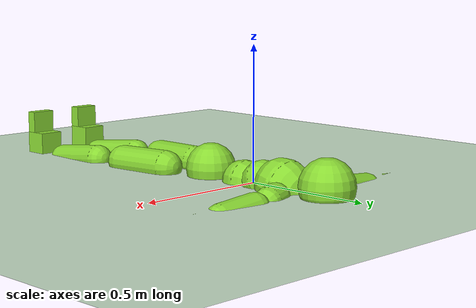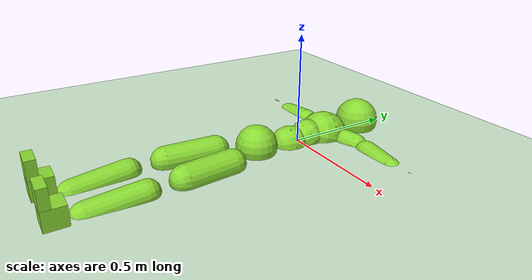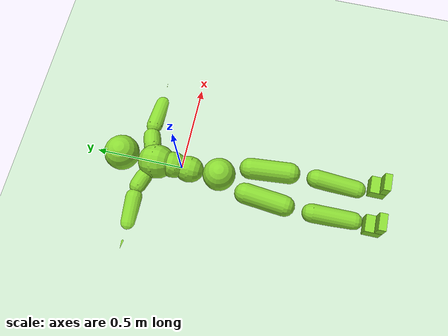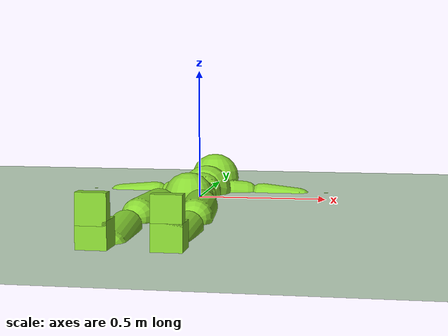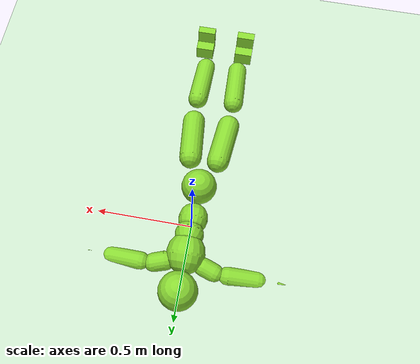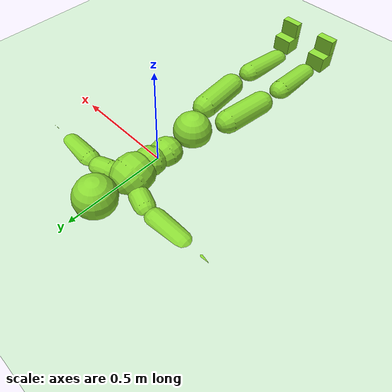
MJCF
<mujoco model="smpl_humanoid">
  <compiler angle="radian" />
  <default>
    <joint damping="0.0" armature="0.01" stiffness="0.0" limited="true" />
    <geom conaffinity="1" condim="3" contype="7" margin="0.001" material="humanoid_green" />
  </default>
  <asset>
    <texture type="skybox" builtin="gradient" rgb1=".4 .5 .6" rgb2="0 0 0" width="100" height="100" />
    <texture builtin="flat" height="1278" mark="cross" markrgb="1 1 1" name="texgeom" random="0.01" rgb1="0.8 0.6 0.4" rgb2="0.8 0.6 0.4" type="cube" width="127" />
    <texture builtin="checker" height="100" name="texplane" rgb1="0 0 0" rgb2="0.8 0.8 0.8" type="2d" width="100" />
    <material name="MatPlane" reflectance="0.5" shininess="1" specular="1" texrepeat="60 60" texture="texplane" />
    <material name="humanoid_green" rgba="0.54 0.85 0.2 1" />
    <material name="geom" texture="texgeom" texuniform="true" />
  </asset>
  <worldbody>
    <light cutoff="100" diffuse="1 1 1" dir="-0 0 -1.3" directional="true" exponent="1" pos="0 0 1.3" specular=".1 .1 .1" />
    <geom conaffinity="1" condim="3" name="floor" pos="0 0 0" rgba="0.8 0.9 0.8 1" size="100 100 .2" type="plane" material="MatPlane" />
    <body name="Pelvis" pos="-0.0018 -0.2233 0.0282">
      <joint name="floating_base_joint" type="free" />
      <geom type="sphere" contype="1" conaffinity="1" density="4629.6296296296305" size="0.0942" pos="0.0000 0.0000 0.0000" name="Pelvis" material="humanoid_green" />
      <body name="L_Hip" pos="0.0695 -0.0914 -0.0068">
        <joint name="L_Hip_x" type="hinge" pos="0 0 0" axis="1 0 0" user="250 2.5 1 500 10 2" armature="0.01" range="-1.5708 1.5708" damping="0" stiffness="0" />
        <joint name="L_Hip_y" type="hinge" pos="0 0 0" axis="0 1 0" user="250 2.5 1 500 10 2" armature="0.01" range="-1.5708 1.5708" damping="0" stiffness="0" />
        <joint name="L_Hip_z" type="hinge" pos="0 0 0" axis="0 0 1" user="250 2.5 1 500 10 2" armature="0.01" range="-1.5708 1.5708" damping="0" stiffness="0" />
        <geom type="capsule" contype="1" conaffinity="1" density="2040.816327" fromto="0.0069 -0.0750 -0.0009 0.0274 -0.3002 -0.0036" size="0.0615" name="L_Hip" material="humanoid_green" />
        <body name="L_Knee" pos="0.0343 -0.3752 -0.0045">
          <joint name="L_Knee_x" type="hinge" pos="0 0 0" axis="1 0 0" user="250 2.5 1 500 10 2" armature="0.01" range="-3.1416 3.1416" damping="0" stiffness="0" />
          <joint name="L_Knee_y" type="hinge" pos="0 0 0" axis="0 1 0" user="250 2.5 1 500 10 2" armature="0.01" range="-0.0982 0.0982" damping="0" stiffness="0" />
          <joint name="L_Knee_z" type="hinge" pos="0 0 0" axis="0 0 1" user="250 2.5 1 500 10 2" armature="0.01" range="-0.0982 0.0982" damping="0" stiffness="0" />
          <geom type="capsule" contype="1" conaffinity="1" density="1234.567901" fromto="-0.0027 -0.0796 -0.0087 -0.0109 -0.3184 -0.0350" size="0.0541" name="L_Knee" material="humanoid_green" />
          <body name="L_Ankle" pos="-0.0136 -0.398 -0.0437">
            <joint name="L_Ankle_x" type="hinge" pos="0 0 0" axis="1 0 0" user="150 2.5 1 500 10 2" armature="0.01" range="-1.5708 1.5708" damping="0" stiffness="0" />
            <joint name="L_Ankle_y" type="hinge" pos="0 0 0" axis="0 1 0" user="150 2.5 1 500 10 2" armature="0.01" range="-1.5708 1.5708" damping="0" stiffness="0" />
            <joint name="L_Ankle_z" type="hinge" pos="0 0 0" axis="0 0 1" user="150 2.5 1 500 10 2" armature="0.01" range="-1.5708 1.5708" damping="0" stiffness="0" />
            <geom type="box" density="449.071564" pos="0.0233 -0.0239 0.0242" size="0.0483 0.0464 0.085" quat="1.0000 0.0000 0.0000 0.0000" name="L_Ankle" material="humanoid_green" />
            <body name="L_Toe" pos="0.0264 -0.0558 0.1193">
              <joint name="L_Toe_x" type="hinge" pos="0 0 0" axis="1 0 0" user="150 1 1 500 1 1" armature="0.01" range="-1.5708 1.5708" damping="0" stiffness="0" />
              <joint name="L_Toe_y" type="hinge" pos="0 0 0" axis="0 1 0" user="150 1 1 500 1 1" armature="0.01" range="-0.7854 0.7854" damping="0" stiffness="0" />
              <joint name="L_Toe_z" type="hinge" pos="0 0 0" axis="0 0 1" user="150 1 1 500 1 1" armature="0.01" range="-0.7854 0.7854" damping="0" stiffness="0" />
              <geom type="box" density="423.206892" pos="-0.0030 0.0055 0.0248" size="0.0478 0.02 0.0496" quat="1.0000 0.0000 0.0000 0.0000" name="L_Toe" material="humanoid_green" />
            </body>
          </body>
        </body>
      </body>
      <body name="R_Hip" pos="-0.0677 -0.0905 -0.0043">
        <joint name="R_Hip_x" type="hinge" pos="0 0 0" axis="1 0 0" user="250 2.5 1 500 10 2" armature="0.01" range="-1.5708 1.5708" damping="0" stiffness="0" />
        <joint name="R_Hip_y" type="hinge" pos="0 0 0" axis="0 1 0" user="250 2.5 1 500 10 2" armature="0.01" range="-1.5708 1.5708" damping="0" stiffness="0" />
        <joint name="R_Hip_z" type="hinge" pos="0 0 0" axis="0 0 1" user="250 2.5 1 500 10 2" armature="0.01" range="-1.5708 1.5708" damping="0" stiffness="0" />
        <geom type="capsule" contype="1" conaffinity="1" density="2040.816327" fromto="-0.0077 -0.0765 -0.0018 -0.0306 -0.3061 -0.0071" size="0.0606" name="R_Hip" material="humanoid_green" />
        <body name="R_Knee" pos="-0.0383 -0.3826 -0.0089">
          <joint name="R_Knee_x" type="hinge" pos="0 0 0" axis="1 0 0" user="250 2.5 1 500 10 2" armature="0.01" range="-3.1416 3.1416" damping="0" stiffness="0" />
          <joint name="R_Knee_y" type="hinge" pos="0 0 0" axis="0 1 0" user="250 2.5 1 500 10 2" armature="0.01" range="-0.0982 0.0982" damping="0" stiffness="0" />
          <joint name="R_Knee_z" type="hinge" pos="0 0 0" axis="0 0 1" user="250 2.5 1 500 10 2" armature="0.01" range="-0.0982 0.0982" damping="0" stiffness="0" />
          <geom type="capsule" contype="1" conaffinity="1" density="1234.567901" fromto="0.0032 -0.0797 -0.0085 0.0126 -0.3187 -0.0338" size="0.0541" name="R_Knee" material="humanoid_green" />
          <body name="R_Ankle" pos="0.0158 -0.3984 -0.0423">
            <joint name="R_Ankle_x" type="hinge" pos="0 0 0" axis="1 0 0" user="150 1 1 500 10 2" armature="0.01" range="-1.5708 1.5708" damping="0" stiffness="0" />
            <joint name="R_Ankle_y" type="hinge" pos="0 0 0" axis="0 1 0" user="150 1 1 500 10 2" armature="0.01" range="-1.5708 1.5708" damping="0" stiffness="0" />
            <joint name="R_Ankle_z" type="hinge" pos="0 0 0" axis="0 0 1" user="150 1 1 500 10 2" armature="0.01" range="-1.5708 1.5708" damping="0" stiffness="0" />
            <geom type="box" density="434.700981" pos="-0.0212 -0.0174 0.0256" size="0.0483 0.0478 0.0865" quat="1.0000 0.0000 0.0000 0.0000" name="R_Ankle" material="humanoid_green" />
            <body name="R_Toe" pos="-0.0254 -0.0481 0.1233">
              <joint name="R_Toe_x" type="hinge" pos="0 0 0" axis="1 0 0" user="150 1 1 500 1 1" armature="0.01" range="-1.5708 1.5708" damping="0" stiffness="0" />
              <joint name="R_Toe_y" type="hinge" pos="0 0 0" axis="0 1 0" user="150 1 1 500 1 1" armature="0.01" range="-0.7854 0.7854" damping="0" stiffness="0" />
              <joint name="R_Toe_z" type="hinge" pos="0 0 0" axis="0 0 1" user="150 1 1 500 1 1" armature="0.01" range="-0.7854 0.7854" damping="0" stiffness="0" />
              <geom type="box" density="407.384095" pos="0.0042 0.0045 0.0227" size="0.0479 0.0216 0.0493" quat="1.0000 0.0000 0.0000 0.0000" name="R_Toe" material="humanoid_green" />
            </body>
          </body>
        </body>
      </body>
      <body name="Torso" pos="-0.0025 0.109 -0.0267">
        <joint name="Torso_x" type="hinge" pos="0 0 0" axis="1 0 0" user="500 5 1 500 10 2" armature="0.01" range="-1.0472 1.0472" damping="0" stiffness="0" />
        <joint name="Torso_y" type="hinge" pos="0 0 0" axis="0 1 0" user="500 5 1 500 10 2" armature="0.01" range="-1.0472 1.0472" damping="0" stiffness="0" />
        <joint name="Torso_z" type="hinge" pos="0 0 0" axis="0 0 1" user="500 5 1 500 10 2" armature="0.01" range="-1.0472 1.0472" damping="0" stiffness="0" />
        <geom type="capsule" contype="1" conaffinity="1" density="2040.816327" fromto="0.0025 0.0608 0.0005 0.0030 0.0743 0.0006" size="0.0769" name="Torso" material="humanoid_green" />
        <body name="Spine" pos="0.0055 0.1352 0.0011">
          <joint name="Spine_x" type="hinge" pos="0 0 0" axis="1 0 0" user="500 5 1 500 10 2" armature="0.01" range="-1.0472 1.0472" damping="0" stiffness="0" />
          <joint name="Spine_y" type="hinge" pos="0 0 0" axis="0 1 0" user="500 5 1 500 10 2" armature="0.01" range="-1.0472 1.0472" damping="0" stiffness="0" />
          <joint name="Spine_z" type="hinge" pos="0 0 0" axis="0 0 1" user="500 5 1 500 10 2" armature="0.01" range="-1.0472 1.0472" damping="0" stiffness="0" />
          <geom type="capsule" contype="1" conaffinity="1" density="2040.816327" fromto="0.0007 0.0238 0.0114 0.0008 0.0291 0.0140" size="0.0755" name="Spine" material="humanoid_green" />
          <body name="Chest" pos="0.0015 0.0529 0.0254">
            <joint name="Chest_x" type="hinge" pos="0 0 0" axis="1 0 0" user="500 5 1 500 10 2" armature="0.01" range="-1.0472 1.0472" damping="0" stiffness="0" />
            <joint name="Chest_y" type="hinge" pos="0 0 0" axis="0 1 0" user="500 5 1 500 10 2" armature="0.01" range="-1.0472 1.0472" damping="0" stiffness="0" />
            <joint name="Chest_z" type="hinge" pos="0 0 0" axis="0 0 1" user="500 5 1 500 10 2" armature="0.01" range="-1.0472 1.0472" damping="0" stiffness="0" />
            <geom type="capsule" contype="1" conaffinity="1" density="2040.816327" fromto="-0.0009 0.0682 -0.0173 -0.0010 0.0833 -0.0212" size="0.1002" name="Chest" material="humanoid_green" />
            <body name="Neck" pos="-0.0028 0.2139 -0.0429">
              <joint name="Neck_x" type="hinge" pos="0 0 0" axis="1 0 0" user="150 1 1 250 50 4" armature="0.01" range="-3.1416 3.1416" damping="0" stiffness="0" />
              <joint name="Neck_y" type="hinge" pos="0 0 0" axis="0 1 0" user="150 1 1 250 50 4" armature="0.01" range="-3.1416 3.1416" damping="0" stiffness="0" />
              <joint name="Neck_z" type="hinge" pos="0 0 0" axis="0 0 1" user="150 1 1 250 50 4" armature="0.01" range="-3.1416 3.1416" damping="0" stiffness="0" />
              <geom type="capsule" contype="1" conaffinity="1" density="1000" fromto="0.0010 0.0130 0.0103 0.0041 0.0520 0.0411" size="0.0436" name="Neck" material="humanoid_green" />
              <body name="Head" pos="0.0052 0.065 0.0513">
                <joint name="Head_x" type="hinge" pos="0 0 0" axis="1 0 0" user="150 1 1 250 50 4" armature="0.01" range="-1.5708 1.5708" damping="0" stiffness="0" />
                <joint name="Head_y" type="hinge" pos="0 0 0" axis="0 1 0" user="150 1 1 250 50 4" armature="0.01" range="-1.5708 1.5708" damping="0" stiffness="0" />
                <joint name="Head_z" type="hinge" pos="0 0 0" axis="0 0 1" user="150 1 1 250 50 4" armature="0.01" range="-1.5708 1.5708" damping="0" stiffness="0" />
                <geom type="sphere" contype="1" conaffinity="1" density="1000" size="0.1011" pos="0.0000 0.0000 0.0000" name="Head" material="humanoid_green" />
              </body>
            </body>
            <body name="L_Thorax" pos="0.0788 0.1217 -0.0341">
              <joint name="L_Thorax_x" type="hinge" pos="0 0 0" axis="1 0 0" user="200 2 1 500 50 4" armature="0.01" range="-3.1416 3.1416" damping="0" stiffness="0" />
              <joint name="L_Thorax_y" type="hinge" pos="0 0 0" axis="0 1 0" user="200 2 1 500 50 4" armature="0.01" range="-3.1416 3.1416" damping="0" stiffness="0" />
              <joint name="L_Thorax_z" type="hinge" pos="0 0 0" axis="0 0 1" user="200 2 1 500 50 4" armature="0.01" range="-3.1416 3.1416" damping="0" stiffness="0" />
              <geom type="capsule" contype="1" conaffinity="1" density="1000" fromto="0.0182 0.0061 -0.0018 0.0728 0.0244 -0.0071" size="0.0521" name="L_Thorax" material="humanoid_green" />
              <body name="L_Shoulder" pos="0.091 0.0305 -0.0089">
                <joint name="L_Shoulder_x" type="hinge" pos="0 0 0" axis="1 0 0" user="200 2 1 500 50 4" armature="0.01" range="-3.1416 3.1416" damping="0" stiffness="0" />
                <joint name="L_Shoulder_y" type="hinge" pos="0 0 0" axis="0 1 0" user="200 2 1 500 50 4" armature="0.01" range="-3.1416 3.1416" damping="0" stiffness="0" />
                <joint name="L_Shoulder_z" type="hinge" pos="0 0 0" axis="0 0 1" user="200 2 1 500 50 4" armature="0.01" range="-3.1416 3.1416" damping="0" stiffness="0" />
                <geom type="capsule" contype="1" conaffinity="1" density="1000" fromto="0.0519 -0.0026 -0.0055 0.2077 -0.0102 -0.0220" size="0.0517" name="L_Shoulder" material="humanoid_green" />
                <body name="L_Elbow" pos="0.2596 -0.0128 -0.0275">
                  <joint name="L_Elbow_x" type="hinge" pos="0 0 0" axis="1 0 0" user="150 1 1 150 10 2" armature="0.01" range="-12.5664 12.5664" damping="0" stiffness="0" />
                  <joint name="L_Elbow_y" type="hinge" pos="0 0 0" axis="0 1 0" user="150 1 1 150 10 2" armature="0.01" range="-12.5664 12.5664" damping="0" stiffness="0" />
                  <joint name="L_Elbow_z" type="hinge" pos="0 0 0" axis="0 0 1" user="150 1 1 150 10 2" armature="0.01" range="-12.5664 12.5664" damping="0" stiffness="0" />
                  <geom type="capsule" contype="1" conaffinity="1" density="1000" fromto="0.0498 0.0018 -0.0002 0.1994 0.0072 -0.0009" size="0.0405" name="L_Elbow" material="humanoid_green" />
                  <body name="L_Wrist" pos="0.2492 0.009 -0.0012">
                    <joint name="L_Wrist_x" type="hinge" pos="0 0 0" axis="1 0 0" user="100 1 1 150 1 1" armature="0.01" range="-3.1416 3.1416" damping="0" stiffness="0" />
                    <joint name="L_Wrist_y" type="hinge" pos="0 0 0" axis="0 1 0" user="100 1 1 150 1 1" armature="0.01" range="-3.1416 3.1416" damping="0" stiffness="0" />
                    <joint name="L_Wrist_z" type="hinge" pos="0 0 0" axis="0 0 1" user="100 1 1 150 1 1" armature="0.01" range="-3.1416 3.1416" damping="0" stiffness="0" />
                    <geom type="capsule" contype="1" conaffinity="1" density="1000" fromto="0.0168 -0.0016 -0.0030 0.0672 -0.0065 -0.0120" size="0.0318" name="L_Wrist" material="humanoid_green" />
                    <body name="L_Hand" pos="0.084 -0.0082 -0.0149">
                      <joint name="L_Hand_x" type="hinge" pos="0 0 0" axis="1 0 0" user="50 1 1 150 1 1" armature="0.01" range="-3.1416 3.1416" damping="0" stiffness="0" />
                      <joint name="L_Hand_y" type="hinge" pos="0 0 0" axis="0 1 0" user="50 1 1 150 1 1" armature="0.01" range="-3.1416 3.1416" damping="0" stiffness="0" />
                      <joint name="L_Hand_z" type="hinge" pos="0 0 0" axis="0 0 1" user="50 1 1 150 1 1" armature="0.01" range="-3.1416 3.1416" damping="0" stiffness="0" />
                      <geom type="box" density="400.552564" pos="0.0493 0.0010 -0.0058" size="0.0585 0.0158 0.0538" quat="1.0000 0.0000 0.0000 0.0000" name="L_Hand" material="humanoid_green" />
                    </body>
                  </body>
                </body>
              </body>
            </body>
            <body name="R_Thorax" pos="-0.0818 0.1188 -0.0386">
              <joint name="R_Thorax_x" type="hinge" pos="0 0 0" axis="1 0 0" user="200 2 1 150 10 2" armature="0.01" range="-3.1416 3.1416" damping="0" stiffness="0" />
              <joint name="R_Thorax_y" type="hinge" pos="0 0 0" axis="0 1 0" user="200 2 1 150 10 2" armature="0.01" range="-3.1416 3.1416" damping="0" stiffness="0" />
              <joint name="R_Thorax_z" type="hinge" pos="0 0 0" axis="0 0 1" user="200 2 1 150 10 2" armature="0.01" range="-3.1416 3.1416" damping="0" stiffness="0" />
              <geom type="capsule" contype="1" conaffinity="1" density="1000" fromto="-0.0192 0.0065 -0.0018 -0.0768 0.0260 -0.0073" size="0.0511" name="R_Thorax" material="humanoid_green" />
              <body name="R_Shoulder" pos="-0.096 0.0326 -0.0091">
                <joint name="R_Shoulder_x" type="hinge" pos="0 0 0" axis="1 0 0" user="200 2 1 250 10 2" armature="0.01" range="-3.1416 3.1416" damping="0" stiffness="0" />
                <joint name="R_Shoulder_y" type="hinge" pos="0 0 0" axis="0 1 0" user="200 2 1 250 10 2" armature="0.01" range="-3.1416 3.1416" damping="0" stiffness="0" />
                <joint name="R_Shoulder_z" type="hinge" pos="0 0 0" axis="0 0 1" user="200 2 1 250 10 2" armature="0.01" range="-3.1416 3.1416" damping="0" stiffness="0" />
                <geom type="capsule" contype="1" conaffinity="1" density="1000" fromto="-0.0507 -0.0027 -0.0043 -0.2030 -0.0107 -0.0171" size="0.0531" name="R_Shoulder" material="humanoid_green" />
                <body name="R_Elbow" pos="-0.2537 -0.0133 -0.0214">
                  <joint name="R_Elbow_x" type="hinge" pos="0 0 0" axis="1 0 0" user="150 1 1 150 10 2" armature="0.01" range="-12.5664 12.5664" damping="0" stiffness="0" />
                  <joint name="R_Elbow_y" type="hinge" pos="0 0 0" axis="0 1 0" user="150 1 1 150 10 2" armature="0.01" range="-12.5664 12.5664" damping="0" stiffness="0" />
                  <joint name="R_Elbow_z" type="hinge" pos="0 0 0" axis="0 0 1" user="150 1 1 150 10 2" armature="0.01" range="-12.5664 12.5664" damping="0" stiffness="0" />
                  <geom type="capsule" contype="1" conaffinity="1" density="1000" fromto="-0.0511 0.0016 -0.0011 -0.2042 0.0062 -0.0044" size="0.0408" name="R_Elbow" material="humanoid_green" />
                  <body name="R_Wrist" pos="-0.2553 0.0078 -0.0056">
                    <joint name="R_Wrist_x" type="hinge" pos="0 0 0" axis="1 0 0" user="100 1 1 150 1 1" armature="0.01" range="-3.1416 3.1416" damping="0" stiffness="0" />
                    <joint name="R_Wrist_y" type="hinge" pos="0 0 0" axis="0 1 0" user="100 1 1 150 1 1" armature="0.01" range="-3.1416 3.1416" damping="0" stiffness="0" />
                    <joint name="R_Wrist_z" type="hinge" pos="0 0 0" axis="0 0 1" user="100 1 1 150 1 1" armature="0.01" range="-3.1416 3.1416" damping="0" stiffness="0" />
                    <geom type="capsule" contype="1" conaffinity="1" density="1000" fromto="-0.0169 -0.0012 -0.0021 -0.0677 -0.0049 -0.0083" size="0.0326" name="R_Wrist" material="humanoid_green" />
                    <body name="R_Hand" pos="-0.0846 -0.0061 -0.0103">
                      <joint name="R_Hand_x" type="hinge" pos="0 0 0" axis="1 0 0" user="50 1 1 150 1 1" armature="0.01" range="-3.1416 3.1416" damping="0" stiffness="0" />
                      <joint name="R_Hand_y" type="hinge" pos="0 0 0" axis="0 1 0" user="50 1 1 150 1 1" armature="0.01" range="-3.1416 3.1416" damping="0" stiffness="0" />
                      <joint name="R_Hand_z" type="hinge" pos="0 0 0" axis="0 0 1" user="50 1 1 150 1 1" armature="0.01" range="-3.1416 3.1416" damping="0" stiffness="0" />
                      <geom type="box" density="403.679611" pos="-0.0462 -0.0009 -0.0079" size="0.0569 0.0164 0.0546" quat="1.0000 0.0000 0.0000 0.0000" name="R_Hand" material="humanoid_green" />
                    </body>
                  </body>
                </body>
              </body>
            </body>
          </body>
        </body>
      </body>
    </body>
  </worldbody>
  <actuator>
    <motor name="L_Hip_x" joint="L_Hip_x" gear="1" />
    <motor name="L_Hip_y" joint="L_Hip_y" gear="1" />
    <motor name="L_Hip_z" joint="L_Hip_z" gear="1" />
    <motor name="L_Knee_x" joint="L_Knee_x" gear="1" />
    <motor name="L_Knee_y" joint="L_Knee_y" gear="1" />
    <motor name="L_Knee_z" joint="L_Knee_z" gear="1" />
    <motor name="L_Ankle_x" joint="L_Ankle_x" gear="1" />
    <motor name="L_Ankle_y" joint="L_Ankle_y" gear="1" />
    <motor name="L_Ankle_z" joint="L_Ankle_z" gear="1" />
    <motor name="L_Toe_x" joint="L_Toe_x" gear="1" />
    <motor name="L_Toe_y" joint="L_Toe_y" gear="1" />
    <motor name="L_Toe_z" joint="L_Toe_z" gear="1" />
    <motor name="R_Hip_x" joint="R_Hip_x" gear="1" />
    <motor name="R_Hip_y" joint="R_Hip_y" gear="1" />
    <motor name="R_Hip_z" joint="R_Hip_z" gear="1" />
    <motor name="R_Knee_x" joint="R_Knee_x" gear="1" />
    <motor name="R_Knee_y" joint="R_Knee_y" gear="1" />
    <motor name="R_Knee_z" joint="R_Knee_z" gear="1" />
    <motor name="R_Ankle_x" joint="R_Ankle_x" gear="1" />
    <motor name="R_Ankle_y" joint="R_Ankle_y" gear="1" />
    <motor name="R_Ankle_z" joint="R_Ankle_z" gear="1" />
    <motor name="R_Toe_x" joint="R_Toe_x" gear="1" />
    <motor name="R_Toe_y" joint="R_Toe_y" gear="1" />
    <motor name="R_Toe_z" joint="R_Toe_z" gear="1" />
    <motor name="Torso_x" joint="Torso_x" gear="1" />
    <motor name="Torso_y" joint="Torso_y" gear="1" />
    <motor name="Torso_z" joint="Torso_z" gear="1" />
    <motor name="Spine_x" joint="Spine_x" gear="1" />
    <motor name="Spine_y" joint="Spine_y" gear="1" />
    <motor name="Spine_z" joint="Spine_z" gear="1" />
    <motor name="Chest_x" joint="Chest_x" gear="1" />
    <motor name="Chest_y" joint="Chest_y" gear="1" />
    <motor name="Chest_z" joint="Chest_z" gear="1" />
    <motor name="Neck_x" joint="Neck_x" gear="1" />
    <motor name="Neck_y" joint="Neck_y" gear="1" />
    <motor name="Neck_z" joint="Neck_z" gear="1" />
    <motor name="Head_x" joint="Head_x" gear="1" />
    <motor name="Head_y" joint="Head_y" gear="1" />
    <motor name="Head_z" joint="Head_z" gear="1" />
    <motor name="L_Thorax_x" joint="L_Thorax_x" gear="1" />
    <motor name="L_Thorax_y" joint="L_Thorax_y" gear="1" />
    <motor name="L_Thorax_z" joint="L_Thorax_z" gear="1" />
    <motor name="L_Shoulder_x" joint="L_Shoulder_x" gear="1" />
    <motor name="L_Shoulder_y" joint="L_Shoulder_y" gear="1" />
    <motor name="L_Shoulder_z" joint="L_Shoulder_z" gear="1" />
    <motor name="L_Elbow_x" joint="L_Elbow_x" gear="1" />
    <motor name="L_Elbow_y" joint="L_Elbow_y" gear="1" />
    <motor name="L_Elbow_z" joint="L_Elbow_z" gear="1" />
    <motor name="L_Wrist_x" joint="L_Wrist_x" gear="1" />
    <motor name="L_Wrist_y" joint="L_Wrist_y" gear="1" />
    <motor name="L_Wrist_z" joint="L_Wrist_z" gear="1" />
    <motor name="L_Hand_x" joint="L_Hand_x" gear="1" />
    <motor name="L_Hand_y" joint="L_Hand_y" gear="1" />
    <motor name="L_Hand_z" joint="L_Hand_z" gear="1" />
    <motor name="R_Thorax_x" joint="R_Thorax_x" gear="1" />
    <motor name="R_Thorax_y" joint="R_Thorax_y" gear="1" />
    <motor name="R_Thorax_z" joint="R_Thorax_z" gear="1" />
    <motor name="R_Shoulder_x" joint="R_Shoulder_x" gear="1" />
    <motor name="R_Shoulder_y" joint="R_Shoulder_y" gear="1" />
    <motor name="R_Shoulder_z" joint="R_Shoulder_z" gear="1" />
    <motor name="R_Elbow_x" joint="R_Elbow_x" gear="1" />
    <motor name="R_Elbow_y" joint="R_Elbow_y" gear="1" />
    <motor name="R_Elbow_z" joint="R_Elbow_z" gear="1" />
    <motor name="R_Wrist_x" joint="R_Wrist_x" gear="1" />
    <motor name="R_Wrist_y" joint="R_Wrist_y" gear="1" />
    <motor name="R_Wrist_z" joint="R_Wrist_z" gear="1" />
    <motor name="R_Hand_x" joint="R_Hand_x" gear="1" />
    <motor name="R_Hand_y" joint="R_Hand_y" gear="1" />
    <motor name="R_Hand_z" joint="R_Hand_z" gear="1" />
  </actuator>
  <contact>
    <exclude body1="Torso" body2="Chest" />
    <exclude body1="Head" body2="Chest" />
    <exclude body1="R_Knee" body2="R_Toe" />
    <exclude body1="R_Knee" body2="L_Ankle" />
    <exclude body1="R_Knee" body2="L_Toe" />
    <exclude body1="L_Knee" body2="L_Toe" />
    <exclude body1="L_Knee" body2="R_Ankle" />
    <exclude body1="L_Knee" body2="R_Toe" />
    <exclude body1="L_Shoulder" body2="Chest" />
    <exclude body1="R_Shoulder" body2="Chest" />
  </contact>
  <sensor />
  <size njmax="700" nconmax="700" />
</mujoco>
